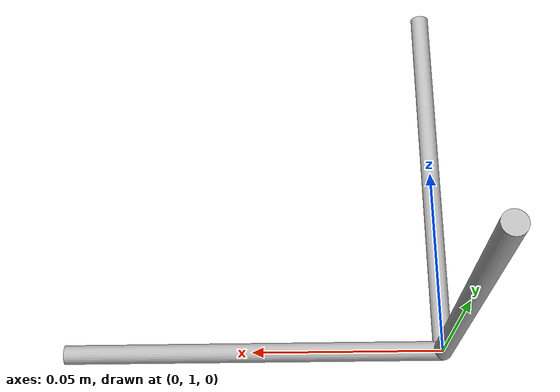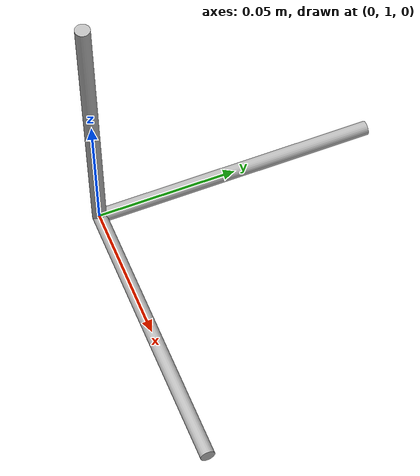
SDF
<sdf version='1.11'>
  <model name='frame'>
        <pose>0 1 0 0 0 0</pose>
        <static>true</static>
        <link name="reference_link_z">
            <pose>0 0 0.05 0 0 0</pose>
            <visual name="reference_visual_z">
                <geometry>
                    <cylinder>
                        <radius>0.0025</radius>
                        <length>0.10</length>
                    </cylinder>
                </geometry>
                <material>
                    <emissive>0 0 1 0.5</emissive>
                </material>
            </visual>
        </link>
        <link name="reference_link_x">
            <pose degrees="true">0.05 0 0 0 90 0</pose>
            <visual name="reference_visual_x">
                <geometry>
                    <cylinder>
                        <radius>0.0025</radius>
                        <length>0.10</length>
                    </cylinder>
                </geometry>
                <material>
                    <emissive>1 0 0 0.5</emissive>
                </material>
            </visual>
        </link>
        <link name="reference_link_y">
            <pose degrees="true">0 0.05 0 90 0 0</pose>
            <visual name="reference_visual_y">
                <geometry>
                    <cylinder>
                        <radius>0.0025</radius>
                        <length>0.10</length>
                    </cylinder>
                </geometry>
                <material>
                    <emissive>0 1 0 0.5</emissive>
                </material>
            </visual>
        </link>
  </model>
</sdf>
